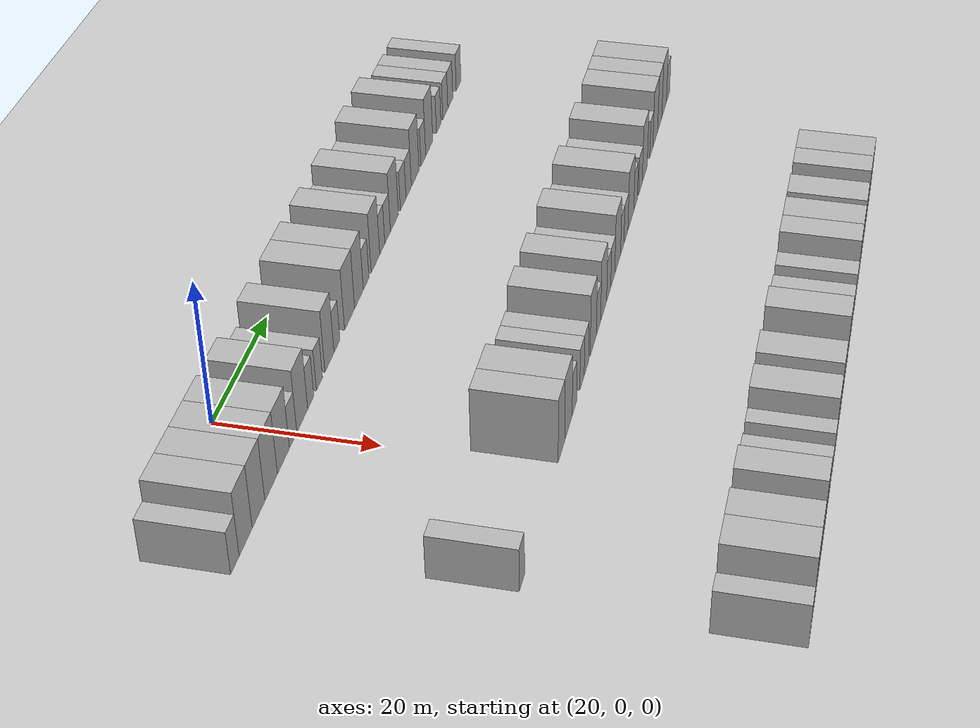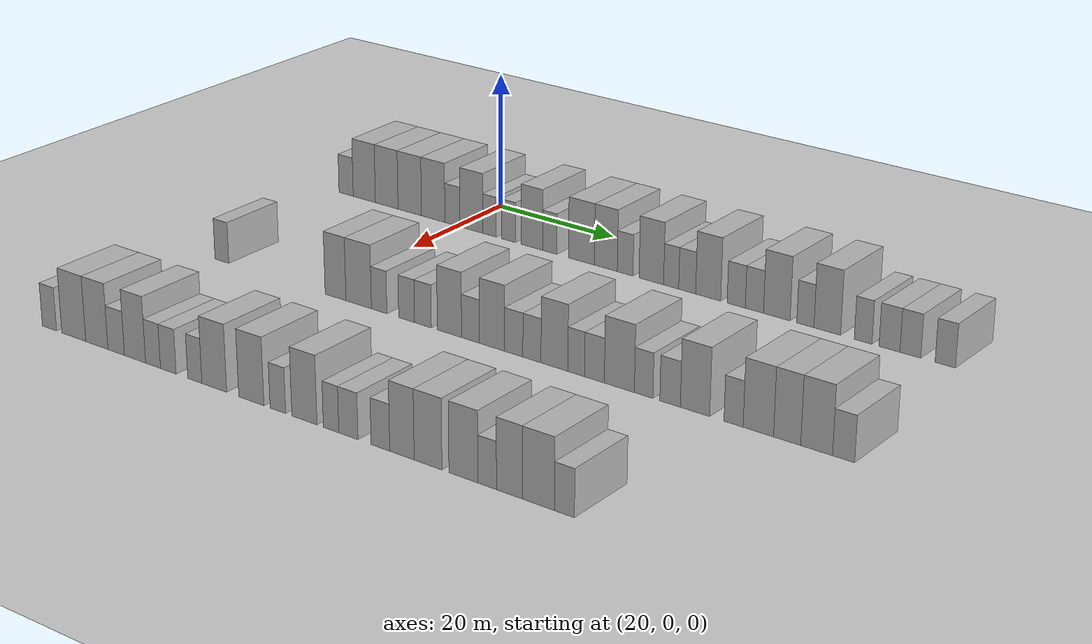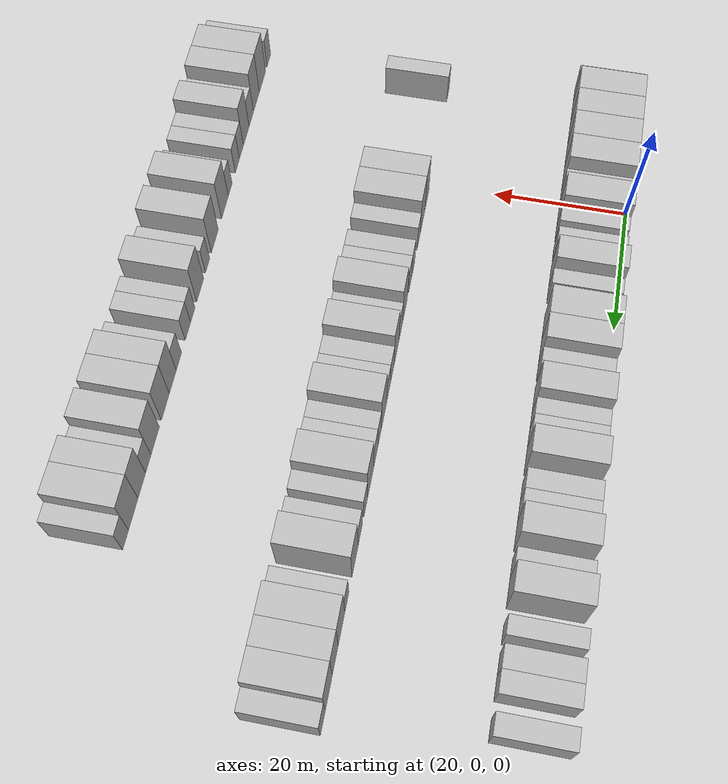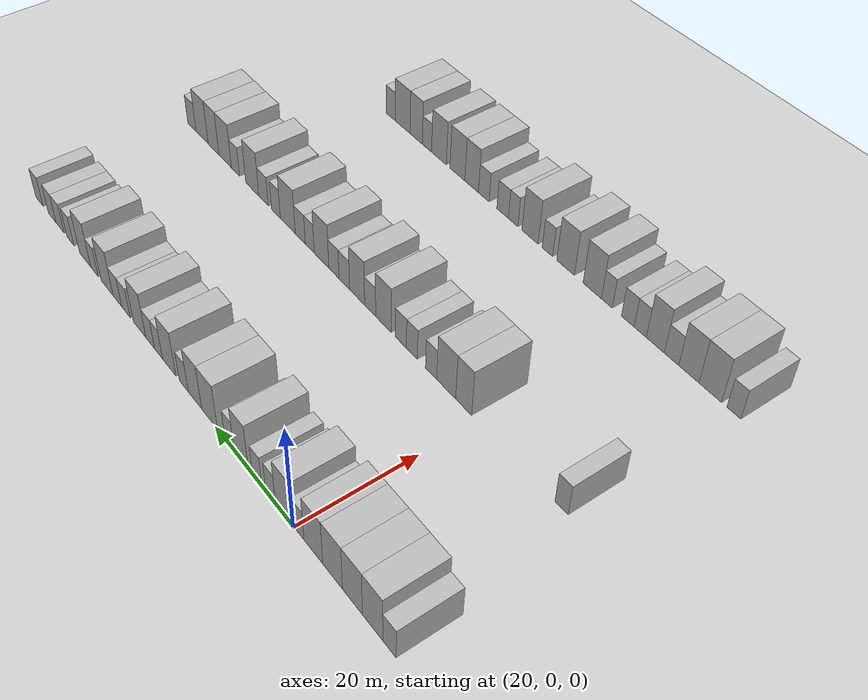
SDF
<sdf version="1.6">
 <world name="default">
  <include><name>ground_plane_1</name><uri>model://HANNAS_ground_plane</uri></include>
  <model name="building_105">
   <static>1</static>
   <pose>25.0000 -21.2391 0 0.000000 0.000000 0.000000</pose>
   <link name="link">
    <pose>0 0 3.00 0 0 0</pose>
    <collision name="collision"><geometry><box><size>10.0000 2.7569 6.0000</size></box></geometry></collision>
    <visual name="visual">
     <cast_shadows>0</cast_shadows>
     <geometry><box><size>10.0000 2.7569 6.0000</size></box></geometry>
     <material>
      <script>
       <uri>model://HANNAS_wall/materials/scripts</uri>
       <uri>model://HANNAS_wall/materials/textures</uri>
       <name>vrc/HANNAS_wall</name>
      </script>
     </material>
    </visual>
   </link>
  </model>
  <model name="building_106">
   <static>1</static>
   <pose>25.0000 -17.7106 0 0.000000 0.000000 0.000000</pose>
   <link name="link">
    <pose>0 0 4.50 0 0 0</pose>
    <collision name="collision"><geometry><box><size>10.0000 4.3000 9.0000</size></box></geometry></collision>
    <visual name="visual">
     <cast_shadows>0</cast_shadows>
     <geometry><box><size>10.0000 4.3000 9.0000</size></box></geometry>
     <material>
      <script>
       <uri>model://HANNAS_wall/materials/scripts</uri>
       <uri>model://HANNAS_wall/materials/textures</uri>
       <name>vrc/HANNAS_wall</name>
      </script>
     </material>
    </visual>
   </link>
  </model>
  <model name="building_107">
   <static>1</static>
   <pose>25.0000 -13.4018 0 0.000000 0.000000 0.000000</pose>
   <link name="link">
    <pose>0 0 4.50 0 0 0</pose>
    <collision name="collision"><geometry><box><size>10.0000 4.3176 9.0000</size></box></geometry></collision>
    <visual name="visual">
     <cast_shadows>0</cast_shadows>
     <geometry><box><size>10.0000 4.3176 9.0000</size></box></geometry>
     <material>
      <script>
       <uri>model://HANNAS_wall/materials/scripts</uri>
       <uri>model://HANNAS_wall/materials/textures</uri>
       <name>vrc/HANNAS_wall</name>
      </script>
     </material>
    </visual>
   </link>
  </model>
  <model name="building_108">
   <static>1</static>
   <pose>25.0000 -9.0313 0 0.000000 0.000000 0.000000</pose>
   <link name="link">
    <pose>0 0 4.50 0 0 0</pose>
    <collision name="collision"><geometry><box><size>10.0000 4.4234 9.0000</size></box></geometry></collision>
    <visual name="visual">
     <cast_shadows>0</cast_shadows>
     <geometry><box><size>10.0000 4.4234 9.0000</size></box></geometry>
     <material>
      <script>
       <uri>model://HANNAS_wall/materials/scripts</uri>
       <uri>model://HANNAS_wall/materials/textures</uri>
       <name>vrc/HANNAS_wall</name>
      </script>
     </material>
    </visual>
   </link>
  </model>
  <model name="building_109">
   <static>1</static>
   <pose>25.0000 -4.6428 0 0.000000 0.000000 0.000000</pose>
   <link name="link">
    <pose>0 0 4.50 0 0 0</pose>
    <collision name="collision"><geometry><box><size>10.0000 4.3535 9.0000</size></box></geometry></collision>
    <visual name="visual">
     <cast_shadows>0</cast_shadows>
     <geometry><box><size>10.0000 4.3535 9.0000</size></box></geometry>
     <material>
      <script>
       <uri>model://HANNAS_wall/materials/scripts</uri>
       <uri>model://HANNAS_wall/materials/textures</uri>
       <name>vrc/HANNAS_wall</name>
      </script>
     </material>
    </visual>
   </link>
  </model>
  <model name="building_110">
   <static>1</static>
   <pose>25.0000 -1.0897 0 0.000000 0.000000 0.000000</pose>
   <link name="link">
    <pose>0 0 3.00 0 0 0</pose>
    <collision name="collision"><geometry><box><size>10.0000 2.7527 6.0000</size></box></geometry></collision>
    <visual name="visual">
     <cast_shadows>0</cast_shadows>
     <geometry><box><size>10.0000 2.7527 6.0000</size></box></geometry>
     <material>
      <script>
       <uri>model://HANNAS_wall/materials/scripts</uri>
       <uri>model://HANNAS_wall/materials/textures</uri>
       <name>vrc/HANNAS_wall</name>
      </script>
     </material>
    </visual>
   </link>
  </model>
  <model name="building_111">
   <static>1</static>
   <pose>25.0000 2.3593 0 0.000000 0.000000 0.000000</pose>
   <link name="link">
    <pose>0 0 4.50 0 0 0</pose>
    <collision name="collision"><geometry><box><size>10.0000 4.1453 9.0000</size></box></geometry></collision>
    <visual name="visual">
     <cast_shadows>0</cast_shadows>
     <geometry><box><size>10.0000 4.1453 9.0000</size></box></geometry>
     <material>
      <script>
       <uri>model://HANNAS_wall/materials/scripts</uri>
       <uri>model://HANNAS_wall/materials/textures</uri>
       <name>vrc/HANNAS_wall</name>
      </script>
     </material>
    </visual>
   </link>
  </model>
  <model name="building_112">
   <static>1</static>
   <pose>25.0000 5.6347 0 0.000000 0.000000 0.000000</pose>
   <link name="link">
    <pose>0 0 3.00 0 0 0</pose>
    <collision name="collision"><geometry><box><size>10.0000 2.4054 6.0000</size></box></geometry></collision>
    <visual name="visual">
     <cast_shadows>0</cast_shadows>
     <geometry><box><size>10.0000 2.4054 6.0000</size></box></geometry>
     <material>
      <script>
       <uri>model://HANNAS_wall/materials/scripts</uri>
       <uri>model://HANNAS_wall/materials/textures</uri>
       <name>vrc/HANNAS_wall</name>
      </script>
     </material>
    </visual>
   </link>
  </model>
  <model name="building_113">
   <static>1</static>
   <pose>25.0000 9.0539 0 0.000000 0.000000 0.000000</pose>
   <link name="link">
    <pose>0 0 3.00 0 0 0</pose>
    <collision name="collision"><geometry><box><size>10.0000 2.4329 6.0000</size></box></geometry></collision>
    <visual name="visual">
     <cast_shadows>0</cast_shadows>
     <geometry><box><size>10.0000 2.4329 6.0000</size></box></geometry>
     <material>
      <script>
       <uri>model://HANNAS_wall/materials/scripts</uri>
       <uri>model://HANNAS_wall/materials/textures</uri>
       <name>vrc/HANNAS_wall</name>
      </script>
     </material>
    </visual>
   </link>
  </model>
  <model name="building_114">
   <static>1</static>
   <pose>25.0000 13.1303 0 0.000000 0.000000 0.000000</pose>
   <link name="link">
    <pose>0 0 4.50 0 0 0</pose>
    <collision name="collision"><geometry><box><size>10.0000 3.7201 9.0000</size></box></geometry></collision>
    <visual name="visual">
     <cast_shadows>0</cast_shadows>
     <geometry><box><size>10.0000 3.7201 9.0000</size></box></geometry>
     <material>
      <script>
       <uri>model://HANNAS_wall/materials/scripts</uri>
       <uri>model://HANNAS_wall/materials/textures</uri>
       <name>vrc/HANNAS_wall</name>
      </script>
     </material>
    </visual>
   </link>
  </model>
  <model name="building_115">
   <static>1</static>
   <pose>25.0000 16.2302 0 0.000000 0.000000 0.000000</pose>
   <link name="link">
    <pose>0 0 3.00 0 0 0</pose>
    <collision name="collision"><geometry><box><size>10.0000 2.4796 6.0000</size></box></geometry></collision>
    <visual name="visual">
     <cast_shadows>0</cast_shadows>
     <geometry><box><size>10.0000 2.4796 6.0000</size></box></geometry>
     <material>
      <script>
       <uri>model://HANNAS_wall/materials/scripts</uri>
       <uri>model://HANNAS_wall/materials/textures</uri>
       <name>vrc/HANNAS_wall</name>
      </script>
     </material>
    </visual>
   </link>
  </model>
  <model name="building_116">
   <static>1</static>
   <pose>25.0000 21.6557 0 0.000000 0.000000 0.000000</pose>
   <link name="link">
    <pose>0 0 4.50 0 0 0</pose>
    <collision name="collision"><geometry><box><size>10.0000 4.3714 9.0000</size></box></geometry></collision>
    <visual name="visual">
     <cast_shadows>0</cast_shadows>
     <geometry><box><size>10.0000 4.3714 9.0000</size></box></geometry>
     <material>
      <script>
       <uri>model://HANNAS_wall/materials/scripts</uri>
       <uri>model://HANNAS_wall/materials/textures</uri>
       <name>vrc/HANNAS_wall</name>
      </script>
     </material>
    </visual>
   </link>
  </model>
  <model name="building_117">
   <static>1</static>
   <pose>25.0000 25.7634 0 0.000000 0.000000 0.000000</pose>
   <link name="link">
    <pose>0 0 4.50 0 0 0</pose>
    <collision name="collision"><geometry><box><size>10.0000 3.8440 9.0000</size></box></geometry></collision>
    <visual name="visual">
     <cast_shadows>0</cast_shadows>
     <geometry><box><size>10.0000 3.8440 9.0000</size></box></geometry>
     <material>
      <script>
       <uri>model://HANNAS_wall/materials/scripts</uri>
       <uri>model://HANNAS_wall/materials/textures</uri>
       <name>vrc/HANNAS_wall</name>
      </script>
     </material>
    </visual>
   </link>
  </model>
  <model name="building_118">
   <static>1</static>
   <pose>25.0000 28.9862 0 0.000000 0.000000 0.000000</pose>
   <link name="link">
    <pose>0 0 3.00 0 0 0</pose>
    <collision name="collision"><geometry><box><size>10.0000 2.6018 6.0000</size></box></geometry></collision>
    <visual name="visual">
     <cast_shadows>0</cast_shadows>
     <geometry><box><size>10.0000 2.6018 6.0000</size></box></geometry>
     <material>
      <script>
       <uri>model://HANNAS_wall/materials/scripts</uri>
       <uri>model://HANNAS_wall/materials/textures</uri>
       <name>vrc/HANNAS_wall</name>
      </script>
     </material>
    </visual>
   </link>
  </model>
  <model name="building_119">
   <static>1</static>
   <pose>25.0000 33.2876 0 0.000000 0.000000 0.000000</pose>
   <link name="link">
    <pose>0 0 4.50 0 0 0</pose>
    <collision name="collision"><geometry><box><size>10.0000 4.0009 9.0000</size></box></geometry></collision>
    <visual name="visual">
     <cast_shadows>0</cast_shadows>
     <geometry><box><size>10.0000 4.0009 9.0000</size></box></geometry>
     <material>
      <script>
       <uri>model://HANNAS_wall/materials/scripts</uri>
       <uri>model://HANNAS_wall/materials/textures</uri>
       <name>vrc/HANNAS_wall</name>
      </script>
     </material>
    </visual>
   </link>
  </model>
  <model name="building_120">
   <static>1</static>
   <pose>25.0000 36.5045 0 0.000000 0.000000 0.000000</pose>
   <link name="link">
    <pose>0 0 3.00 0 0 0</pose>
    <collision name="collision"><geometry><box><size>10.0000 2.4331 6.0000</size></box></geometry></collision>
    <visual name="visual">
     <cast_shadows>0</cast_shadows>
     <geometry><box><size>10.0000 2.4331 6.0000</size></box></geometry>
     <material>
      <script>
       <uri>model://HANNAS_wall/materials/scripts</uri>
       <uri>model://HANNAS_wall/materials/textures</uri>
       <name>vrc/HANNAS_wall</name>
      </script>
     </material>
    </visual>
   </link>
  </model>
  <model name="building_121">
   <static>1</static>
   <pose>25.0000 39.0752 0 0.000000 0.000000 0.000000</pose>
   <link name="link">
    <pose>0 0 3.00 0 0 0</pose>
    <collision name="collision"><geometry><box><size>10.0000 2.7082 6.0000</size></box></geometry></collision>
    <visual name="visual">
     <cast_shadows>0</cast_shadows>
     <geometry><box><size>10.0000 2.7082 6.0000</size></box></geometry>
     <material>
      <script>
       <uri>model://HANNAS_wall/materials/scripts</uri>
       <uri>model://HANNAS_wall/materials/textures</uri>
       <name>vrc/HANNAS_wall</name>
      </script>
     </material>
    </visual>
   </link>
  </model>
  <model name="building_122">
   <static>1</static>
   <pose>25.0000 42.4125 0 0.000000 0.000000 0.000000</pose>
   <link name="link">
    <pose>0 0 4.50 0 0 0</pose>
    <collision name="collision"><geometry><box><size>10.0000 3.9665 9.0000</size></box></geometry></collision>
    <visual name="visual">
     <cast_shadows>0</cast_shadows>
     <geometry><box><size>10.0000 3.9665 9.0000</size></box></geometry>
     <material>
      <script>
       <uri>model://HANNAS_wall/materials/scripts</uri>
       <uri>model://HANNAS_wall/materials/textures</uri>
       <name>vrc/HANNAS_wall</name>
      </script>
     </material>
    </visual>
   </link>
  </model>
  <model name="building_123">
   <static>1</static>
   <pose>25.0000 46.8051 0 0.000000 0.000000 0.000000</pose>
   <link name="link">
    <pose>0 0 3.00 0 0 0</pose>
    <collision name="collision"><geometry><box><size>10.0000 2.8187 6.0000</size></box></geometry></collision>
    <visual name="visual">
     <cast_shadows>0</cast_shadows>
     <geometry><box><size>10.0000 2.8187 6.0000</size></box></geometry>
     <material>
      <script>
       <uri>model://HANNAS_wall/materials/scripts</uri>
       <uri>model://HANNAS_wall/materials/textures</uri>
       <name>vrc/HANNAS_wall</name>
      </script>
     </material>
    </visual>
   </link>
  </model>
  <model name="building_124">
   <static>1</static>
   <pose>25.0000 49.6141 0 0.000000 0.000000 0.000000</pose>
   <link name="link">
    <pose>0 0 3.00 0 0 0</pose>
    <collision name="collision"><geometry><box><size>10.0000 2.7993 6.0000</size></box></geometry></collision>
    <visual name="visual">
     <cast_shadows>0</cast_shadows>
     <geometry><box><size>10.0000 2.7993 6.0000</size></box></geometry>
     <material>
      <script>
       <uri>model://HANNAS_wall/materials/scripts</uri>
       <uri>model://HANNAS_wall/materials/textures</uri>
       <name>vrc/HANNAS_wall</name>
      </script>
     </material>
    </visual>
   </link>
  </model>
  <model name="building_125">
   <static>1</static>
   <pose>25.0000 53.0402 0 0.000000 0.000000 0.000000</pose>
   <link name="link">
    <pose>0 0 4.50 0 0 0</pose>
    <collision name="collision"><geometry><box><size>10.0000 4.0528 9.0000</size></box></geometry></collision>
    <visual name="visual">
     <cast_shadows>0</cast_shadows>
     <geometry><box><size>10.0000 4.0528 9.0000</size></box></geometry>
     <material>
      <script>
       <uri>model://HANNAS_wall/materials/scripts</uri>
       <uri>model://HANNAS_wall/materials/textures</uri>
       <name>vrc/HANNAS_wall</name>
      </script>
     </material>
    </visual>
   </link>
  </model>
  <model name="building_126">
   <static>1</static>
   <pose>25.0000 57.3533 0 0.000000 0.000000 0.000000</pose>
   <link name="link">
    <pose>0 0 3.00 0 0 0</pose>
    <collision name="collision"><geometry><box><size>10.0000 2.5734 6.0000</size></box></geometry></collision>
    <visual name="visual">
     <cast_shadows>0</cast_shadows>
     <geometry><box><size>10.0000 2.5734 6.0000</size></box></geometry>
     <material>
      <script>
       <uri>model://HANNAS_wall/materials/scripts</uri>
       <uri>model://HANNAS_wall/materials/textures</uri>
       <name>vrc/HANNAS_wall</name>
      </script>
     </material>
    </visual>
   </link>
  </model>
  <model name="building_127">
   <static>1</static>
   <pose>25.0000 60.6126 0 0.000000 0.000000 0.000000</pose>
   <link name="link">
    <pose>0 0 4.50 0 0 0</pose>
    <collision name="collision"><geometry><box><size>10.0000 3.9452 9.0000</size></box></geometry></collision>
    <visual name="visual">
     <cast_shadows>0</cast_shadows>
     <geometry><box><size>10.0000 3.9452 9.0000</size></box></geometry>
     <material>
      <script>
       <uri>model://HANNAS_wall/materials/scripts</uri>
       <uri>model://HANNAS_wall/materials/textures</uri>
       <name>vrc/HANNAS_wall</name>
      </script>
     </material>
    </visual>
   </link>
  </model>
  <model name="building_128">
   <static>1</static>
   <pose>25.0000 65.8716 0 0.000000 0.000000 0.000000</pose>
   <link name="link">
    <pose>0 0 3.00 0 0 0</pose>
    <collision name="collision"><geometry><box><size>10.0000 2.5726 6.0000</size></box></geometry></collision>
    <visual name="visual">
     <cast_shadows>0</cast_shadows>
     <geometry><box><size>10.0000 2.5726 6.0000</size></box></geometry>
     <material>
      <script>
       <uri>model://HANNAS_wall/materials/scripts</uri>
       <uri>model://HANNAS_wall/materials/textures</uri>
       <name>vrc/HANNAS_wall</name>
      </script>
     </material>
    </visual>
   </link>
  </model>
  <model name="building_129">
   <static>1</static>
   <pose>25.0000 69.6576 0 0.000000 0.000000 0.000000</pose>
   <link name="link">
    <pose>0 0 3.00 0 0 0</pose>
    <collision name="collision"><geometry><box><size>10.0000 2.9995 6.0000</size></box></geometry></collision>
    <visual name="visual">
     <cast_shadows>0</cast_shadows>
     <geometry><box><size>10.0000 2.9995 6.0000</size></box></geometry>
     <material>
      <script>
       <uri>model://HANNAS_wall/materials/scripts</uri>
       <uri>model://HANNAS_wall/materials/textures</uri>
       <name>vrc/HANNAS_wall</name>
      </script>
     </material>
    </visual>
   </link>
  </model>
  <model name="building_130">
   <static>1</static>
   <pose>25.0000 72.6328 0 0.000000 0.000000 0.000000</pose>
   <link name="link">
    <pose>0 0 3.00 0 0 0</pose>
    <collision name="collision"><geometry><box><size>10.0000 2.9508 6.0000</size></box></geometry></collision>
    <visual name="visual">
     <cast_shadows>0</cast_shadows>
     <geometry><box><size>10.0000 2.9508 6.0000</size></box></geometry>
     <material>
      <script>
       <uri>model://HANNAS_wall/materials/scripts</uri>
       <uri>model://HANNAS_wall/materials/textures</uri>
       <name>vrc/HANNAS_wall</name>
      </script>
     </material>
    </visual>
   </link>
  </model>
  <model name="building_131">
   <static>1</static>
   <pose>25.0000 77.5270 0 0.000000 0.000000 0.000000</pose>
   <link name="link">
    <pose>0 0 3.00 0 0 0</pose>
    <collision name="collision"><geometry><box><size>10.0000 2.8377 6.0000</size></box></geometry></collision>
    <visual name="visual">
     <cast_shadows>0</cast_shadows>
     <geometry><box><size>10.0000 2.8377 6.0000</size></box></geometry>
     <material>
      <script>
       <uri>model://HANNAS_wall/materials/scripts</uri>
       <uri>model://HANNAS_wall/materials/textures</uri>
       <name>vrc/HANNAS_wall</name>
      </script>
     </material>
    </visual>
   </link>
  </model>
  <model name="building_338">
   <static>1</static>
   <pose>55.0000 -17.6751 0 0.000000 0.000000 0.000000</pose>
   <link name="link">
    <pose>0 0 3.00 0 0 0</pose>
    <collision name="collision"><geometry><box><size>10.0000 2.6086 6.0000</size></box></geometry></collision>
    <visual name="visual">
     <cast_shadows>0</cast_shadows>
     <geometry><box><size>10.0000 2.6086 6.0000</size></box></geometry>
     <material>
      <script>
       <uri>model://HANNAS_wall/materials/scripts</uri>
       <uri>model://HANNAS_wall/materials/textures</uri>
       <name>vrc/HANNAS_wall</name>
      </script>
     </material>
    </visual>
   </link>
  </model>
  <model name="building_339">
   <static>1</static>
   <pose>55.0000 3.1255 0 0.000000 0.000000 0.000000</pose>
   <link name="link">
    <pose>0 0 4.50 0 0 0</pose>
    <collision name="collision"><geometry><box><size>10.0000 3.6642 9.0000</size></box></geometry></collision>
    <visual name="visual">
     <cast_shadows>0</cast_shadows>
     <geometry><box><size>10.0000 3.6642 9.0000</size></box></geometry>
     <material>
      <script>
       <uri>model://HANNAS_wall/materials/scripts</uri>
       <uri>model://HANNAS_wall/materials/textures</uri>
       <name>vrc/HANNAS_wall</name>
      </script>
     </material>
    </visual>
   </link>
  </model>
  <model name="building_340">
   <static>1</static>
   <pose>55.0000 7.1688 0 0.000000 0.000000 0.000000</pose>
   <link name="link">
    <pose>0 0 4.50 0 0 0</pose>
    <collision name="collision"><geometry><box><size>10.0000 4.4223 9.0000</size></box></geometry></collision>
    <visual name="visual">
     <cast_shadows>0</cast_shadows>
     <geometry><box><size>10.0000 4.4223 9.0000</size></box></geometry>
     <material>
      <script>
       <uri>model://HANNAS_wall/materials/scripts</uri>
       <uri>model://HANNAS_wall/materials/textures</uri>
       <name>vrc/HANNAS_wall</name>
      </script>
     </material>
    </visual>
   </link>
  </model>
  <model name="building_341">
   <static>1</static>
   <pose>55.0000 10.7109 0 0.000000 0.000000 0.000000</pose>
   <link name="link">
    <pose>0 0 3.00 0 0 0</pose>
    <collision name="collision"><geometry><box><size>10.0000 2.6619 6.0000</size></box></geometry></collision>
    <visual name="visual">
     <cast_shadows>0</cast_shadows>
     <geometry><box><size>10.0000 2.6619 6.0000</size></box></geometry>
     <material>
      <script>
       <uri>model://HANNAS_wall/materials/scripts</uri>
       <uri>model://HANNAS_wall/materials/textures</uri>
       <name>vrc/HANNAS_wall</name>
      </script>
     </material>
    </visual>
   </link>
  </model>
  <model name="building_342">
   <static>1</static>
   <pose>55.0000 15.3827 0 0.000000 0.000000 0.000000</pose>
   <link name="link">
    <pose>0 0 3.00 0 0 0</pose>
    <collision name="collision"><geometry><box><size>10.0000 2.6816 6.0000</size></box></geometry></collision>
    <visual name="visual">
     <cast_shadows>0</cast_shadows>
     <geometry><box><size>10.0000 2.6816 6.0000</size></box></geometry>
     <material>
      <script>
       <uri>model://HANNAS_wall/materials/scripts</uri>
       <uri>model://HANNAS_wall/materials/textures</uri>
       <name>vrc/HANNAS_wall</name>
      </script>
     </material>
    </visual>
   </link>
  </model>
  <model name="building_343">
   <static>1</static>
   <pose>55.0000 18.1285 0 0.000000 0.000000 0.000000</pose>
   <link name="link">
    <pose>0 0 3.00 0 0 0</pose>
    <collision name="collision"><geometry><box><size>10.0000 2.8099 6.0000</size></box></geometry></collision>
    <visual name="visual">
     <cast_shadows>0</cast_shadows>
     <geometry><box><size>10.0000 2.8099 6.0000</size></box></geometry>
     <material>
      <script>
       <uri>model://HANNAS_wall/materials/scripts</uri>
       <uri>model://HANNAS_wall/materials/textures</uri>
       <name>vrc/HANNAS_wall</name>
      </script>
     </material>
    </visual>
   </link>
  </model>
  <model name="building_344">
   <static>1</static>
   <pose>55.0000 22.5285 0 0.000000 0.000000 0.000000</pose>
   <link name="link">
    <pose>0 0 4.50 0 0 0</pose>
    <collision name="collision"><geometry><box><size>10.0000 3.9902 9.0000</size></box></geometry></collision>
    <visual name="visual">
     <cast_shadows>0</cast_shadows>
     <geometry><box><size>10.0000 3.9902 9.0000</size></box></geometry>
     <material>
      <script>
       <uri>model://HANNAS_wall/materials/scripts</uri>
       <uri>model://HANNAS_wall/materials/textures</uri>
       <name>vrc/HANNAS_wall</name>
      </script>
     </material>
    </visual>
   </link>
  </model>
  <model name="building_345">
   <static>1</static>
   <pose>55.0000 25.9690 0 0.000000 0.000000 0.000000</pose>
   <link name="link">
    <pose>0 0 3.00 0 0 0</pose>
    <collision name="collision"><geometry><box><size>10.0000 2.8907 6.0000</size></box></geometry></collision>
    <visual name="visual">
     <cast_shadows>0</cast_shadows>
     <geometry><box><size>10.0000 2.8907 6.0000</size></box></geometry>
     <material>
      <script>
       <uri>model://HANNAS_wall/materials/scripts</uri>
       <uri>model://HANNAS_wall/materials/textures</uri>
       <name>vrc/HANNAS_wall</name>
      </script>
     </material>
    </visual>
   </link>
  </model>
  <model name="building_346">
   <static>1</static>
   <pose>55.0000 29.4277 0 0.000000 0.000000 0.000000</pose>
   <link name="link">
    <pose>0 0 4.50 0 0 0</pose>
    <collision name="collision"><geometry><box><size>10.0000 4.0267 9.0000</size></box></geometry></collision>
    <visual name="visual">
     <cast_shadows>0</cast_shadows>
     <geometry><box><size>10.0000 4.0267 9.0000</size></box></geometry>
     <material>
      <script>
       <uri>model://HANNAS_wall/materials/scripts</uri>
       <uri>model://HANNAS_wall/materials/textures</uri>
       <name>vrc/HANNAS_wall</name>
      </script>
     </material>
    </visual>
   </link>
  </model>
  <model name="building_347">
   <static>1</static>
   <pose>55.0000 32.8894 0 0.000000 0.000000 0.000000</pose>
   <link name="link">
    <pose>0 0 3.00 0 0 0</pose>
    <collision name="collision"><geometry><box><size>10.0000 2.8967 6.0000</size></box></geometry></collision>
    <visual name="visual">
     <cast_shadows>0</cast_shadows>
     <geometry><box><size>10.0000 2.8967 6.0000</size></box></geometry>
     <material>
      <script>
       <uri>model://HANNAS_wall/materials/scripts</uri>
       <uri>model://HANNAS_wall/materials/textures</uri>
       <name>vrc/HANNAS_wall</name>
      </script>
     </material>
    </visual>
   </link>
  </model>
  <model name="building_348">
   <static>1</static>
   <pose>55.0000 35.7535 0 0.000000 0.000000 0.000000</pose>
   <link name="link">
    <pose>0 0 3.00 0 0 0</pose>
    <collision name="collision"><geometry><box><size>10.0000 2.8314 6.0000</size></box></geometry></collision>
    <visual name="visual">
     <cast_shadows>0</cast_shadows>
     <geometry><box><size>10.0000 2.8314 6.0000</size></box></geometry>
     <material>
      <script>
       <uri>model://HANNAS_wall/materials/scripts</uri>
       <uri>model://HANNAS_wall/materials/textures</uri>
       <name>vrc/HANNAS_wall</name>
      </script>
     </material>
    </visual>
   </link>
  </model>
  <model name="building_349">
   <static>1</static>
   <pose>55.0000 39.2467 0 0.000000 0.000000 0.000000</pose>
   <link name="link">
    <pose>0 0 4.50 0 0 0</pose>
    <collision name="collision"><geometry><box><size>10.0000 4.1550 9.0000</size></box></geometry></collision>
    <visual name="visual">
     <cast_shadows>0</cast_shadows>
     <geometry><box><size>10.0000 4.1550 9.0000</size></box></geometry>
     <material>
      <script>
       <uri>model://HANNAS_wall/materials/scripts</uri>
       <uri>model://HANNAS_wall/materials/textures</uri>
       <name>vrc/HANNAS_wall</name>
      </script>
     </material>
    </visual>
   </link>
  </model>
  <model name="building_350">
   <static>1</static>
   <pose>55.0000 42.6019 0 0.000000 0.000000 0.000000</pose>
   <link name="link">
    <pose>0 0 3.00 0 0 0</pose>
    <collision name="collision"><geometry><box><size>10.0000 2.5554 6.0000</size></box></geometry></collision>
    <visual name="visual">
     <cast_shadows>0</cast_shadows>
     <geometry><box><size>10.0000 2.5554 6.0000</size></box></geometry>
     <material>
      <script>
       <uri>model://HANNAS_wall/materials/scripts</uri>
       <uri>model://HANNAS_wall/materials/textures</uri>
       <name>vrc/HANNAS_wall</name>
      </script>
     </material>
    </visual>
   </link>
  </model>
  <model name="building_351">
   <static>1</static>
   <pose>55.0000 45.3664 0 0.000000 0.000000 0.000000</pose>
   <link name="link">
    <pose>0 0 3.00 0 0 0</pose>
    <collision name="collision"><geometry><box><size>10.0000 2.9735 6.0000</size></box></geometry></collision>
    <visual name="visual">
     <cast_shadows>0</cast_shadows>
     <geometry><box><size>10.0000 2.9735 6.0000</size></box></geometry>
     <material>
      <script>
       <uri>model://HANNAS_wall/materials/scripts</uri>
       <uri>model://HANNAS_wall/materials/textures</uri>
       <name>vrc/HANNAS_wall</name>
      </script>
     </material>
    </visual>
   </link>
  </model>
  <model name="building_352">
   <static>1</static>
   <pose>55.0000 49.0861 0 0.000000 0.000000 0.000000</pose>
   <link name="link">
    <pose>0 0 4.50 0 0 0</pose>
    <collision name="collision"><geometry><box><size>10.0000 4.4660 9.0000</size></box></geometry></collision>
    <visual name="visual">
     <cast_shadows>0</cast_shadows>
     <geometry><box><size>10.0000 4.4660 9.0000</size></box></geometry>
     <material>
      <script>
       <uri>model://HANNAS_wall/materials/scripts</uri>
       <uri>model://HANNAS_wall/materials/textures</uri>
       <name>vrc/HANNAS_wall</name>
      </script>
     </material>
    </visual>
   </link>
  </model>
  <model name="building_353">
   <static>1</static>
   <pose>55.0000 52.6796 0 0.000000 0.000000 0.000000</pose>
   <link name="link">
    <pose>0 0 3.00 0 0 0</pose>
    <collision name="collision"><geometry><box><size>10.0000 2.7210 6.0000</size></box></geometry></collision>
    <visual name="visual">
     <cast_shadows>0</cast_shadows>
     <geometry><box><size>10.0000 2.7210 6.0000</size></box></geometry>
     <material>
      <script>
       <uri>model://HANNAS_wall/materials/scripts</uri>
       <uri>model://HANNAS_wall/materials/textures</uri>
       <name>vrc/HANNAS_wall</name>
      </script>
     </material>
    </visual>
   </link>
  </model>
  <model name="building_354">
   <static>1</static>
   <pose>55.0000 56.5191 0 0.000000 0.000000 0.000000</pose>
   <link name="link">
    <pose>0 0 3.00 0 0 0</pose>
    <collision name="collision"><geometry><box><size>10.0000 2.9580 6.0000</size></box></geometry></collision>
    <visual name="visual">
     <cast_shadows>0</cast_shadows>
     <geometry><box><size>10.0000 2.9580 6.0000</size></box></geometry>
     <material>
      <script>
       <uri>model://HANNAS_wall/materials/scripts</uri>
       <uri>model://HANNAS_wall/materials/textures</uri>
       <name>vrc/HANNAS_wall</name>
      </script>
     </material>
    </visual>
   </link>
  </model>
  <model name="building_355">
   <static>1</static>
   <pose>55.0000 60.0971 0 0.000000 0.000000 0.000000</pose>
   <link name="link">
    <pose>0 0 4.50 0 0 0</pose>
    <collision name="collision"><geometry><box><size>10.0000 4.1981 9.0000</size></box></geometry></collision>
    <visual name="visual">
     <cast_shadows>0</cast_shadows>
     <geometry><box><size>10.0000 4.1981 9.0000</size></box></geometry>
     <material>
      <script>
       <uri>model://HANNAS_wall/materials/scripts</uri>
       <uri>model://HANNAS_wall/materials/textures</uri>
       <name>vrc/HANNAS_wall</name>
      </script>
     </material>
    </visual>
   </link>
  </model>
  <model name="building_356">
   <static>1</static>
   <pose>55.0000 65.5301 0 0.000000 0.000000 0.000000</pose>
   <link name="link">
    <pose>0 0 3.00 0 0 0</pose>
    <collision name="collision"><geometry><box><size>10.0000 2.6680 6.0000</size></box></geometry></collision>
    <visual name="visual">
     <cast_shadows>0</cast_shadows>
     <geometry><box><size>10.0000 2.6680 6.0000</size></box></geometry>
     <material>
      <script>
       <uri>model://HANNAS_wall/materials/scripts</uri>
       <uri>model://HANNAS_wall/materials/textures</uri>
       <name>vrc/HANNAS_wall</name>
      </script>
     </material>
    </visual>
   </link>
  </model>
  <model name="building_357">
   <static>1</static>
   <pose>55.0000 68.9541 0 0.000000 0.000000 0.000000</pose>
   <link name="link">
    <pose>0 0 4.50 0 0 0</pose>
    <collision name="collision"><geometry><box><size>10.0000 4.1800 9.0000</size></box></geometry></collision>
    <visual name="visual">
     <cast_shadows>0</cast_shadows>
     <geometry><box><size>10.0000 4.1800 9.0000</size></box></geometry>
     <material>
      <script>
       <uri>model://HANNAS_wall/materials/scripts</uri>
       <uri>model://HANNAS_wall/materials/textures</uri>
       <name>vrc/HANNAS_wall</name>
      </script>
     </material>
    </visual>
   </link>
  </model>
  <model name="building_358">
   <static>1</static>
   <pose>55.0000 72.8830 0 0.000000 0.000000 0.000000</pose>
   <link name="link">
    <pose>0 0 4.50 0 0 0</pose>
    <collision name="collision"><geometry><box><size>10.0000 3.6778 9.0000</size></box></geometry></collision>
    <visual name="visual">
     <cast_shadows>0</cast_shadows>
     <geometry><box><size>10.0000 3.6778 9.0000</size></box></geometry>
     <material>
      <script>
       <uri>model://HANNAS_wall/materials/scripts</uri>
       <uri>model://HANNAS_wall/materials/textures</uri>
       <name>vrc/HANNAS_wall</name>
      </script>
     </material>
    </visual>
   </link>
  </model>
  <model name="building_359">
   <static>1</static>
   <pose>55.0000 76.8442 0 0.000000 0.000000 0.000000</pose>
   <link name="link">
    <pose>0 0 4.50 0 0 0</pose>
    <collision name="collision"><geometry><box><size>10.0000 4.2447 9.0000</size></box></geometry></collision>
    <visual name="visual">
     <cast_shadows>0</cast_shadows>
     <geometry><box><size>10.0000 4.2447 9.0000</size></box></geometry>
     <material>
      <script>
       <uri>model://HANNAS_wall/materials/scripts</uri>
       <uri>model://HANNAS_wall/materials/textures</uri>
       <name>vrc/HANNAS_wall</name>
      </script>
     </material>
    </visual>
   </link>
  </model>
  <model name="building_360">
   <static>1</static>
   <pose>55.0000 80.4174 0 0.000000 0.000000 0.000000</pose>
   <link name="link">
    <pose>0 0 3.00 0 0 0</pose>
    <collision name="collision"><geometry><box><size>10.0000 2.9017 6.0000</size></box></geometry></collision>
    <visual name="visual">
     <cast_shadows>0</cast_shadows>
     <geometry><box><size>10.0000 2.9017 6.0000</size></box></geometry>
     <material>
      <script>
       <uri>model://HANNAS_wall/materials/scripts</uri>
       <uri>model://HANNAS_wall/materials/textures</uri>
       <name>vrc/HANNAS_wall</name>
      </script>
     </material>
    </visual>
   </link>
  </model>
  <model name="building_563">
   <static>1</static>
   <pose>85.0000 -19.4152 0 0.000000 0.000000 0.000000</pose>
   <link name="link">
    <pose>0 0 3.00 0 0 0</pose>
    <collision name="collision"><geometry><box><size>10.0000 2.6485 6.0000</size></box></geometry></collision>
    <visual name="visual">
     <cast_shadows>0</cast_shadows>
     <geometry><box><size>10.0000 2.6485 6.0000</size></box></geometry>
     <material>
      <script>
       <uri>model://HANNAS_wall/materials/scripts</uri>
       <uri>model://HANNAS_wall/materials/textures</uri>
       <name>vrc/HANNAS_wall</name>
      </script>
     </material>
    </visual>
   </link>
  </model>
  <model name="building_564">
   <static>1</static>
   <pose>85.0000 -14.8791 0 0.000000 0.000000 0.000000</pose>
   <link name="link">
    <pose>0 0 4.50 0 0 0</pose>
    <collision name="collision"><geometry><box><size>10.0000 4.4238 9.0000</size></box></geometry></collision>
    <visual name="visual">
     <cast_shadows>0</cast_shadows>
     <geometry><box><size>10.0000 4.4238 9.0000</size></box></geometry>
     <material>
      <script>
       <uri>model://HANNAS_wall/materials/scripts</uri>
       <uri>model://HANNAS_wall/materials/textures</uri>
       <name>vrc/HANNAS_wall</name>
      </script>
     </material>
    </visual>
   </link>
  </model>
  <model name="building_565">
   <static>1</static>
   <pose>85.0000 -10.6507 0 0.000000 0.000000 0.000000</pose>
   <link name="link">
    <pose>0 0 4.50 0 0 0</pose>
    <collision name="collision"><geometry><box><size>10.0000 4.0330 9.0000</size></box></geometry></collision>
    <visual name="visual">
     <cast_shadows>0</cast_shadows>
     <geometry><box><size>10.0000 4.0330 9.0000</size></box></geometry>
     <material>
      <script>
       <uri>model://HANNAS_wall/materials/scripts</uri>
       <uri>model://HANNAS_wall/materials/textures</uri>
       <name>vrc/HANNAS_wall</name>
      </script>
     </material>
    </visual>
   </link>
  </model>
  <model name="building_566">
   <static>1</static>
   <pose>85.0000 -7.1503 0 0.000000 0.000000 0.000000</pose>
   <link name="link">
    <pose>0 0 3.00 0 0 0</pose>
    <collision name="collision"><geometry><box><size>10.0000 2.9679 6.0000</size></box></geometry></collision>
    <visual name="visual">
     <cast_shadows>0</cast_shadows>
     <geometry><box><size>10.0000 2.9679 6.0000</size></box></geometry>
     <material>
      <script>
       <uri>model://HANNAS_wall/materials/scripts</uri>
       <uri>model://HANNAS_wall/materials/textures</uri>
       <name>vrc/HANNAS_wall</name>
      </script>
     </material>
    </visual>
   </link>
  </model>
  <model name="building_567">
   <static>1</static>
   <pose>85.0000 -3.7846 0 0.000000 0.000000 0.000000</pose>
   <link name="link">
    <pose>0 0 4.50 0 0 0</pose>
    <collision name="collision"><geometry><box><size>10.0000 3.7634 9.0000</size></box></geometry></collision>
    <visual name="visual">
     <cast_shadows>0</cast_shadows>
     <geometry><box><size>10.0000 3.7634 9.0000</size></box></geometry>
     <material>
      <script>
       <uri>model://HANNAS_wall/materials/scripts</uri>
       <uri>model://HANNAS_wall/materials/textures</uri>
       <name>vrc/HANNAS_wall</name>
      </script>
     </material>
    </visual>
   </link>
  </model>
  <model name="building_568">
   <static>1</static>
   <pose>85.0000 -0.6049 0 0.000000 0.000000 0.000000</pose>
   <link name="link">
    <pose>0 0 3.00 0 0 0</pose>
    <collision name="collision"><geometry><box><size>10.0000 2.5960 6.0000</size></box></geometry></collision>
    <visual name="visual">
     <cast_shadows>0</cast_shadows>
     <geometry><box><size>10.0000 2.5960 6.0000</size></box></geometry>
     <material>
      <script>
       <uri>model://HANNAS_wall/materials/scripts</uri>
       <uri>model://HANNAS_wall/materials/textures</uri>
       <name>vrc/HANNAS_wall</name>
      </script>
     </material>
    </visual>
   </link>
  </model>
  <model name="building_569">
   <static>1</static>
   <pose>85.0000 2.0583 0 0.000000 0.000000 0.000000</pose>
   <link name="link">
    <pose>0 0 3.00 0 0 0</pose>
    <collision name="collision"><geometry><box><size>10.0000 2.7303 6.0000</size></box></geometry></collision>
    <visual name="visual">
     <cast_shadows>0</cast_shadows>
     <geometry><box><size>10.0000 2.7303 6.0000</size></box></geometry>
     <material>
      <script>
       <uri>model://HANNAS_wall/materials/scripts</uri>
       <uri>model://HANNAS_wall/materials/textures</uri>
       <name>vrc/HANNAS_wall</name>
      </script>
     </material>
    </visual>
   </link>
  </model>
  <model name="building_570">
   <static>1</static>
   <pose>85.0000 6.6278 0 0.000000 0.000000 0.000000</pose>
   <link name="link">
    <pose>0 0 3.00 0 0 0</pose>
    <collision name="collision"><geometry><box><size>10.0000 2.4086 6.0000</size></box></geometry></collision>
    <visual name="visual">
     <cast_shadows>0</cast_shadows>
     <geometry><box><size>10.0000 2.4086 6.0000</size></box></geometry>
     <material>
      <script>
       <uri>model://HANNAS_wall/materials/scripts</uri>
       <uri>model://HANNAS_wall/materials/textures</uri>
       <name>vrc/HANNAS_wall</name>
      </script>
     </material>
    </visual>
   </link>
  </model>
  <model name="building_571">
   <static>1</static>
   <pose>85.0000 9.9198 0 0.000000 0.000000 0.000000</pose>
   <link name="link">
    <pose>0 0 4.50 0 0 0</pose>
    <collision name="collision"><geometry><box><size>10.0000 4.1754 9.0000</size></box></geometry></collision>
    <visual name="visual">
     <cast_shadows>0</cast_shadows>
     <geometry><box><size>10.0000 4.1754 9.0000</size></box></geometry>
     <material>
      <script>
       <uri>model://HANNAS_wall/materials/scripts</uri>
       <uri>model://HANNAS_wall/materials/textures</uri>
       <name>vrc/HANNAS_wall</name>
      </script>
     </material>
    </visual>
   </link>
  </model>
  <model name="building_572">
   <static>1</static>
   <pose>85.0000 16.0811 0 0.000000 0.000000 0.000000</pose>
   <link name="link">
    <pose>0 0 4.50 0 0 0</pose>
    <collision name="collision"><geometry><box><size>10.0000 4.1472 9.0000</size></box></geometry></collision>
    <visual name="visual">
     <cast_shadows>0</cast_shadows>
     <geometry><box><size>10.0000 4.1472 9.0000</size></box></geometry>
     <material>
      <script>
       <uri>model://HANNAS_wall/materials/scripts</uri>
       <uri>model://HANNAS_wall/materials/textures</uri>
       <name>vrc/HANNAS_wall</name>
      </script>
     </material>
    </visual>
   </link>
  </model>
  <model name="building_573">
   <static>1</static>
   <pose>85.0000 20.4116 0 0.000000 0.000000 0.000000</pose>
   <link name="link">
    <pose>0 0 3.00 0 0 0</pose>
    <collision name="collision"><geometry><box><size>10.0000 2.5137 6.0000</size></box></geometry></collision>
    <visual name="visual">
     <cast_shadows>0</cast_shadows>
     <geometry><box><size>10.0000 2.5137 6.0000</size></box></geometry>
     <material>
      <script>
       <uri>model://HANNAS_wall/materials/scripts</uri>
       <uri>model://HANNAS_wall/materials/textures</uri>
       <name>vrc/HANNAS_wall</name>
      </script>
     </material>
    </visual>
   </link>
  </model>
  <model name="building_574">
   <static>1</static>
   <pose>85.0000 24.6675 0 0.000000 0.000000 0.000000</pose>
   <link name="link">
    <pose>0 0 4.50 0 0 0</pose>
    <collision name="collision"><geometry><box><size>10.0000 3.9982 9.0000</size></box></geometry></collision>
    <visual name="visual">
     <cast_shadows>0</cast_shadows>
     <geometry><box><size>10.0000 3.9982 9.0000</size></box></geometry>
     <material>
      <script>
       <uri>model://HANNAS_wall/materials/scripts</uri>
       <uri>model://HANNAS_wall/materials/textures</uri>
       <name>vrc/HANNAS_wall</name>
      </script>
     </material>
    </visual>
   </link>
  </model>
  <model name="building_575">
   <static>1</static>
   <pose>85.0000 28.8728 0 0.000000 0.000000 0.000000</pose>
   <link name="link">
    <pose>0 0 3.00 0 0 0</pose>
    <collision name="collision"><geometry><box><size>10.0000 2.4123 6.0000</size></box></geometry></collision>
    <visual name="visual">
     <cast_shadows>0</cast_shadows>
     <geometry><box><size>10.0000 2.4123 6.0000</size></box></geometry>
     <material>
      <script>
       <uri>model://HANNAS_wall/materials/scripts</uri>
       <uri>model://HANNAS_wall/materials/textures</uri>
       <name>vrc/HANNAS_wall</name>
      </script>
     </material>
    </visual>
   </link>
  </model>
  <model name="building_576">
   <static>1</static>
   <pose>85.0000 31.5605 0 0.000000 0.000000 0.000000</pose>
   <link name="link">
    <pose>0 0 3.00 0 0 0</pose>
    <collision name="collision"><geometry><box><size>10.0000 2.9632 6.0000</size></box></geometry></collision>
    <visual name="visual">
     <cast_shadows>0</cast_shadows>
     <geometry><box><size>10.0000 2.9632 6.0000</size></box></geometry>
     <material>
      <script>
       <uri>model://HANNAS_wall/materials/scripts</uri>
       <uri>model://HANNAS_wall/materials/textures</uri>
       <name>vrc/HANNAS_wall</name>
      </script>
     </material>
    </visual>
   </link>
  </model>
  <model name="building_577">
   <static>1</static>
   <pose>85.0000 36.4553 0 0.000000 0.000000 0.000000</pose>
   <link name="link">
    <pose>0 0 3.00 0 0 0</pose>
    <collision name="collision"><geometry><box><size>10.0000 2.8265 6.0000</size></box></geometry></collision>
    <visual name="visual">
     <cast_shadows>0</cast_shadows>
     <geometry><box><size>10.0000 2.8265 6.0000</size></box></geometry>
     <material>
      <script>
       <uri>model://HANNAS_wall/materials/scripts</uri>
       <uri>model://HANNAS_wall/materials/textures</uri>
       <name>vrc/HANNAS_wall</name>
      </script>
     </material>
    </visual>
   </link>
  </model>
  <model name="building_578">
   <static>1</static>
   <pose>85.0000 39.6959 0 0.000000 0.000000 0.000000</pose>
   <link name="link">
    <pose>0 0 4.50 0 0 0</pose>
    <collision name="collision"><geometry><box><size>10.0000 3.6546 9.0000</size></box></geometry></collision>
    <visual name="visual">
     <cast_shadows>0</cast_shadows>
     <geometry><box><size>10.0000 3.6546 9.0000</size></box></geometry>
     <material>
      <script>
       <uri>model://HANNAS_wall/materials/scripts</uri>
       <uri>model://HANNAS_wall/materials/textures</uri>
       <name>vrc/HANNAS_wall</name>
      </script>
     </material>
    </visual>
   </link>
  </model>
  <model name="building_579">
   <static>1</static>
   <pose>85.0000 43.5720 0 0.000000 0.000000 0.000000</pose>
   <link name="link">
    <pose>0 0 4.50 0 0 0</pose>
    <collision name="collision"><geometry><box><size>10.0000 4.0976 9.0000</size></box></geometry></collision>
    <visual name="visual">
     <cast_shadows>0</cast_shadows>
     <geometry><box><size>10.0000 4.0976 9.0000</size></box></geometry>
     <material>
      <script>
       <uri>model://HANNAS_wall/materials/scripts</uri>
       <uri>model://HANNAS_wall/materials/textures</uri>
       <name>vrc/HANNAS_wall</name>
      </script>
     </material>
    </visual>
   </link>
  </model>
  <model name="building_580">
   <static>1</static>
   <pose>85.0000 48.7064 0 0.000000 0.000000 0.000000</pose>
   <link name="link">
    <pose>0 0 4.50 0 0 0</pose>
    <collision name="collision"><geometry><box><size>10.0000 4.1711 9.0000</size></box></geometry></collision>
    <visual name="visual">
     <cast_shadows>0</cast_shadows>
     <geometry><box><size>10.0000 4.1711 9.0000</size></box></geometry>
     <material>
      <script>
       <uri>model://HANNAS_wall/materials/scripts</uri>
       <uri>model://HANNAS_wall/materials/textures</uri>
       <name>vrc/HANNAS_wall</name>
      </script>
     </material>
    </visual>
   </link>
  </model>
  <model name="building_581">
   <static>1</static>
   <pose>85.0000 52.1071 0 0.000000 0.000000 0.000000</pose>
   <link name="link">
    <pose>0 0 3.00 0 0 0</pose>
    <collision name="collision"><geometry><box><size>10.0000 2.6304 6.0000</size></box></geometry></collision>
    <visual name="visual">
     <cast_shadows>0</cast_shadows>
     <geometry><box><size>10.0000 2.6304 6.0000</size></box></geometry>
     <material>
      <script>
       <uri>model://HANNAS_wall/materials/scripts</uri>
       <uri>model://HANNAS_wall/materials/textures</uri>
       <name>vrc/HANNAS_wall</name>
      </script>
     </material>
    </visual>
   </link>
  </model>
  <model name="building_582">
   <static>1</static>
   <pose>85.0000 55.2349 0 0.000000 0.000000 0.000000</pose>
   <link name="link">
    <pose>0 0 4.50 0 0 0</pose>
    <collision name="collision"><geometry><box><size>10.0000 3.6251 9.0000</size></box></geometry></collision>
    <visual name="visual">
     <cast_shadows>0</cast_shadows>
     <geometry><box><size>10.0000 3.6251 9.0000</size></box></geometry>
     <material>
      <script>
       <uri>model://HANNAS_wall/materials/scripts</uri>
       <uri>model://HANNAS_wall/materials/textures</uri>
       <name>vrc/HANNAS_wall</name>
      </script>
     </material>
    </visual>
   </link>
  </model>
  <model name="building_583">
   <static>1</static>
   <pose>85.0000 59.2615 0 0.000000 0.000000 0.000000</pose>
   <link name="link">
    <pose>0 0 4.50 0 0 0</pose>
    <collision name="collision"><geometry><box><size>10.0000 4.4280 9.0000</size></box></geometry></collision>
    <visual name="visual">
     <cast_shadows>0</cast_shadows>
     <geometry><box><size>10.0000 4.4280 9.0000</size></box></geometry>
     <material>
      <script>
       <uri>model://HANNAS_wall/materials/scripts</uri>
       <uri>model://HANNAS_wall/materials/textures</uri>
       <name>vrc/HANNAS_wall</name>
      </script>
     </material>
    </visual>
   </link>
  </model>
  <model name="building_584">
   <static>1</static>
   <pose>85.0000 62.8287 0 0.000000 0.000000 0.000000</pose>
   <link name="link">
    <pose>0 0 3.00 0 0 0</pose>
    <collision name="collision"><geometry><box><size>10.0000 2.7065 6.0000</size></box></geometry></collision>
    <visual name="visual">
     <cast_shadows>0</cast_shadows>
     <geometry><box><size>10.0000 2.7065 6.0000</size></box></geometry>
     <material>
      <script>
       <uri>model://HANNAS_wall/materials/scripts</uri>
       <uri>model://HANNAS_wall/materials/textures</uri>
       <name>vrc/HANNAS_wall</name>
      </script>
     </material>
    </visual>
   </link>
  </model>
 </world>
</sdf>
